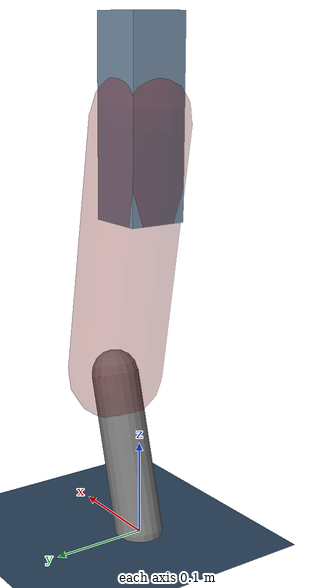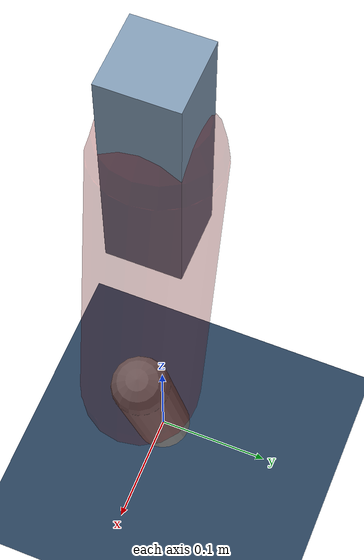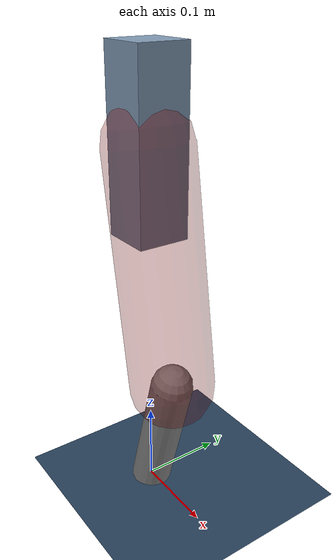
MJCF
<mujoco model="Hopper2D">
	<compiler inertiafromgeom="true" angle="radian" />
	<option timestep="0.001" integrator="implicit" cone="elliptic" solver="Newton" tolerance="1e-10" />

	<default>
		<geom contype="1" conaffinity="1" condim="3" friction="2 0.005 0.0001" solref="0.005 1" />
		<joint limited="true" damping="0.1" />
	</default>

	<asset>
		<texture name="skybox" type="skybox" builtin="gradient" rgb1=".4 .6 .8" rgb2="0 0 0" width="800" height="800" />
		<texture name="grid" type="2d" builtin="checker" rgb1=".1 .2 .3" rgb2=".2 .3 .4" width="300" height="300" mark="edge" markrgb=".2 .3 .4" />
		<material name="ground" texture="grid" texrepeat="1 1" texuniform="true" reflectance="0.1" />
		<material name="leg" rgba="0.5 0.6 0.7 1" />
	</asset>

	<worldbody>

		<geom name="floor" type="plane" size="5 5 0.25" material="ground" />

		<light directional="false" diffuse="0.8 0.8 0.8" specular="0.3 0.3 0.3" pos="0 0 2" dir="0 0 -1" />
		<light mode="targetbodycom" target="base" directional="false" diffuse="0.8 0.8 0.8" specular="0.3 0.3 0.3" pos="0 0 2" dir="0 0 -1" />

		<camera name="fixed" pos="0 -2 1" xyaxes="1 0 0 0 0 1" />
		<camera name="tracking" mode="trackcom" pos="0 -3 1" />

		<body name="root" pos="0 0 0.43549856890710015">
			<joint name="slide_x" type="slide" axis="1 0 0" range="-100 100" />
			<joint name="slide_z" type="slide" axis="0 0 1" range="0 10" />

			<body name="base" pos="0 0 0">
				<geom name="torso" type="box" size="0.03 0.03 0.1" mass="2.725" material="leg" />

				<body name="link1" pos="0 0 0" euler="0 1.4037672519643656 0">
					<joint type="hinge" axis="0 -1 0" pos="0 0 0" name="hinge1" limited="true" range="-3.14 3.14" stiffness="0" damping="0.1" />
					<geom name="thigh" type="capsule" fromto="0 0 0 0.27426914078290965 0 0" size="0.05" rgba="0.5 0 0 0.3" mass="0.919926680113856" />

					<body name="link2" pos="0.27426914078290965 0 0" euler="0 0.4365802972729182 0">
						<joint type="hinge" axis="0 -1 0" pos="0 0 0" name="hinge2" limited="true" range="-3.14 3.14" stiffness="0" damping="0.1" />
						<geom name="shank" type="capsule" fromto="0 0 0 0.17122942812419048 0 0" size="0.025" mass="0.3763064853117714" />

					</body>
				</body>
			</body>
		</body>
	</worldbody>

	<actuator>
		<motor name="torque1" joint="hinge1" ctrlrange="-112.9794282536683 112.9794282536683" ctrllimited="true" gear="1" />
		<motor name="torque2" joint="hinge2" ctrlrange="-71.94998701348331 71.94998701348331" ctrllimited="true" gear="1" />
	</actuator>
</mujoco>
